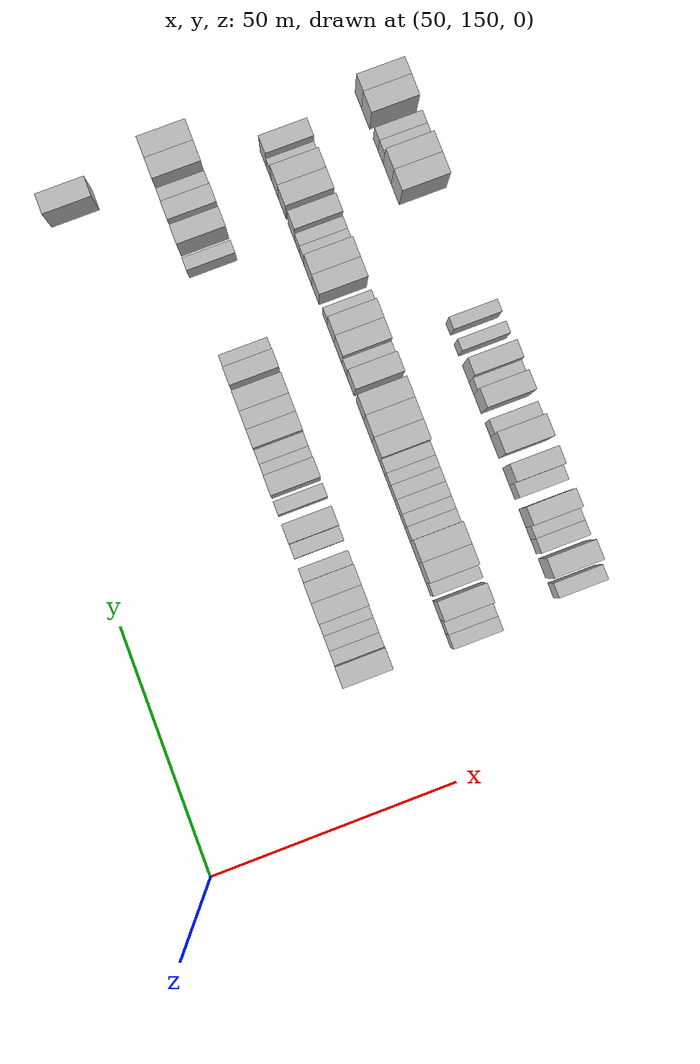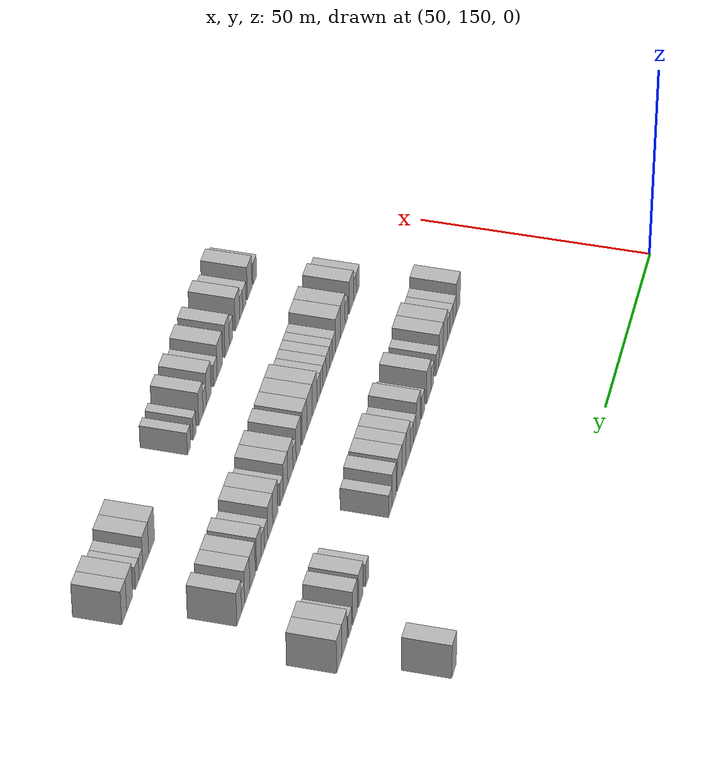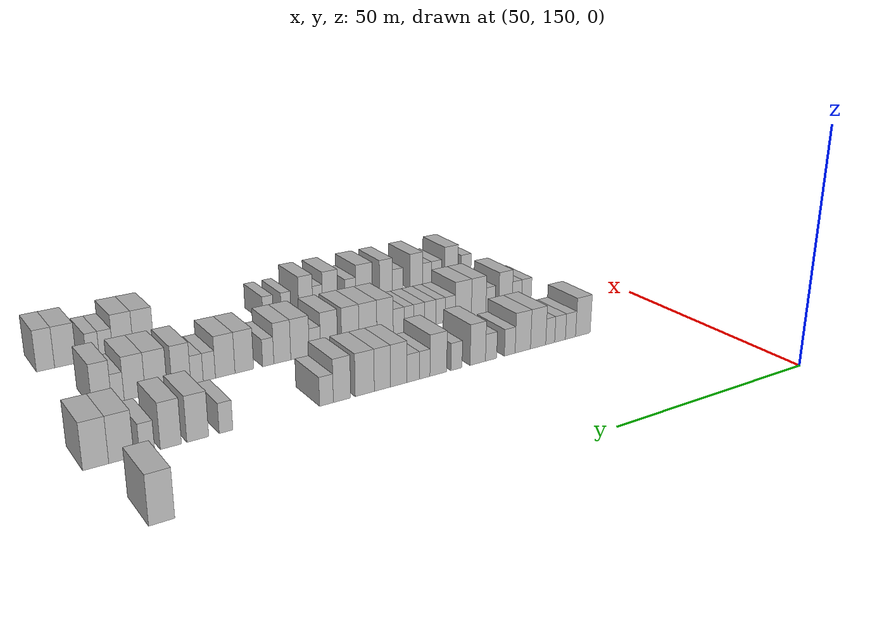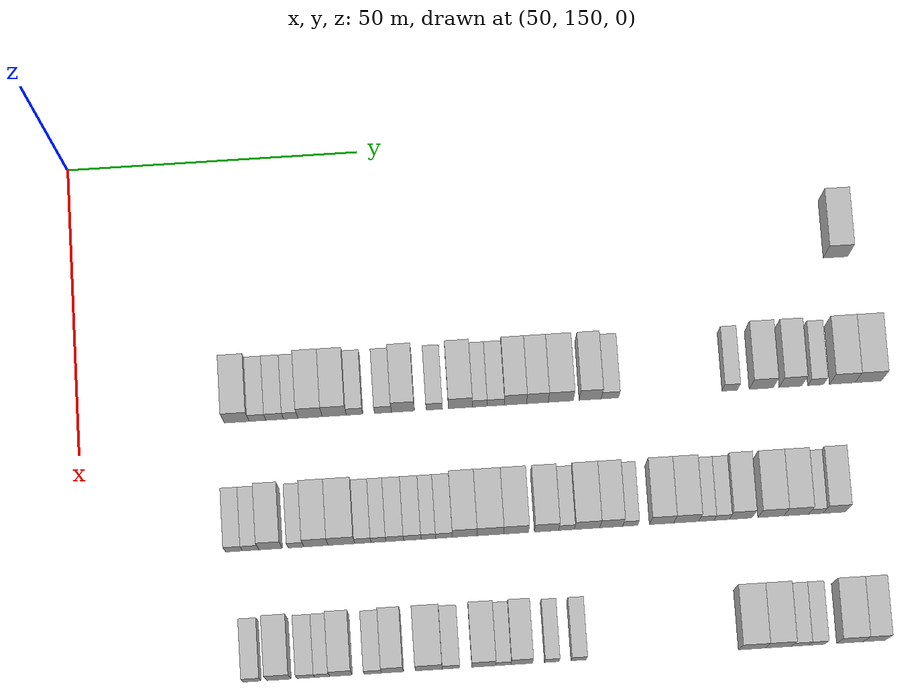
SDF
<sdf version="1.6">
 <world name="default">
  <model name="building_527">
   <static>1</static>
   <pose>69.0000 280.8551 0 0.000000 0.000000 0.000000</pose>
   <link name="link">
    <pose>0 0 4.50 0 0 0</pose>
    <collision name="collision"><geometry><box><size>10.0000 4.2234 9.0000</size></box></geometry></collision>
    <visual name="visual">
     <cast_shadows>0</cast_shadows>
     <geometry><box><size>10.0000 4.2234 9.0000</size></box></geometry>
     <material>
      <script>
       <uri>model://HANNAS_wall/materials/scripts</uri>
       <uri>model://HANNAS_wall/materials/textures</uri>
       <name>vrc/HANNAS_wall</name>
      </script>
     </material>
    </visual>
   </link>
  </model>
  <model name="building_696">
   <static>1</static>
   <pose>91.0000 176.9595 0 0.000000 0.000000 0.000000</pose>
   <link name="link">
    <pose>0 0 4.50 0 0 0</pose>
    <collision name="collision"><geometry><box><size>10.0000 4.1835 9.0000</size></box></geometry></collision>
    <visual name="visual">
     <cast_shadows>0</cast_shadows>
     <geometry><box><size>10.0000 4.1835 9.0000</size></box></geometry>
     <material>
      <script>
       <uri>model://HANNAS_wall/materials/scripts</uri>
       <uri>model://HANNAS_wall/materials/textures</uri>
       <name>vrc/HANNAS_wall</name>
      </script>
     </material>
    </visual>
   </link>
  </model>
  <model name="building_697">
   <static>1</static>
   <pose>91.0000 180.4779 0 0.000000 0.000000 0.000000</pose>
   <link name="link">
    <pose>0 0 3.00 0 0 0</pose>
    <collision name="collision"><geometry><box><size>10.0000 2.8533 6.0000</size></box></geometry></collision>
    <visual name="visual">
     <cast_shadows>0</cast_shadows>
     <geometry><box><size>10.0000 2.8533 6.0000</size></box></geometry>
     <material>
      <script>
       <uri>model://HANNAS_wall/materials/scripts</uri>
       <uri>model://HANNAS_wall/materials/textures</uri>
       <name>vrc/HANNAS_wall</name>
      </script>
     </material>
    </visual>
   </link>
  </model>
  <model name="building_698">
   <static>1</static>
   <pose>91.0000 183.4001 0 0.000000 0.000000 0.000000</pose>
   <link name="link">
    <pose>0 0 3.00 0 0 0</pose>
    <collision name="collision"><geometry><box><size>10.0000 2.9910 6.0000</size></box></geometry></collision>
    <visual name="visual">
     <cast_shadows>0</cast_shadows>
     <geometry><box><size>10.0000 2.9910 6.0000</size></box></geometry>
     <material>
      <script>
       <uri>model://HANNAS_wall/materials/scripts</uri>
       <uri>model://HANNAS_wall/materials/textures</uri>
       <name>vrc/HANNAS_wall</name>
      </script>
     </material>
    </visual>
   </link>
  </model>
  <model name="building_699">
   <static>1</static>
   <pose>91.0000 186.1237 0 0.000000 0.000000 0.000000</pose>
   <link name="link">
    <pose>0 0 3.00 0 0 0</pose>
    <collision name="collision"><geometry><box><size>10.0000 2.4561 6.0000</size></box></geometry></collision>
    <visual name="visual">
     <cast_shadows>0</cast_shadows>
     <geometry><box><size>10.0000 2.4561 6.0000</size></box></geometry>
     <material>
      <script>
       <uri>model://HANNAS_wall/materials/scripts</uri>
       <uri>model://HANNAS_wall/materials/textures</uri>
       <name>vrc/HANNAS_wall</name>
      </script>
     </material>
    </visual>
   </link>
  </model>
  <model name="building_700">
   <static>1</static>
   <pose>91.0000 189.4160 0 0.000000 0.000000 0.000000</pose>
   <link name="link">
    <pose>0 0 4.50 0 0 0</pose>
    <collision name="collision"><geometry><box><size>10.0000 4.1286 9.0000</size></box></geometry></collision>
    <visual name="visual">
     <cast_shadows>0</cast_shadows>
     <geometry><box><size>10.0000 4.1286 9.0000</size></box></geometry>
     <material>
      <script>
       <uri>model://HANNAS_wall/materials/scripts</uri>
       <uri>model://HANNAS_wall/materials/textures</uri>
       <name>vrc/HANNAS_wall</name>
      </script>
     </material>
    </visual>
   </link>
  </model>
  <model name="building_701">
   <static>1</static>
   <pose>91.0000 193.5276 0 0.000000 0.000000 0.000000</pose>
   <link name="link">
    <pose>0 0 4.50 0 0 0</pose>
    <collision name="collision"><geometry><box><size>10.0000 4.0945 9.0000</size></box></geometry></collision>
    <visual name="visual">
     <cast_shadows>0</cast_shadows>
     <geometry><box><size>10.0000 4.0945 9.0000</size></box></geometry>
     <material>
      <script>
       <uri>model://HANNAS_wall/materials/scripts</uri>
       <uri>model://HANNAS_wall/materials/textures</uri>
       <name>vrc/HANNAS_wall</name>
      </script>
     </material>
    </visual>
   </link>
  </model>
  <model name="building_702">
   <static>1</static>
   <pose>91.0000 196.9751 0 0.000000 0.000000 0.000000</pose>
   <link name="link">
    <pose>0 0 3.00 0 0 0</pose>
    <collision name="collision"><geometry><box><size>10.0000 2.8006 6.0000</size></box></geometry></collision>
    <visual name="visual">
     <cast_shadows>0</cast_shadows>
     <geometry><box><size>10.0000 2.8006 6.0000</size></box></geometry>
     <material>
      <script>
       <uri>model://HANNAS_wall/materials/scripts</uri>
       <uri>model://HANNAS_wall/materials/textures</uri>
       <name>vrc/HANNAS_wall</name>
      </script>
     </material>
    </visual>
   </link>
  </model>
  <model name="building_703">
   <static>1</static>
   <pose>91.0000 201.8153 0 0.000000 0.000000 0.000000</pose>
   <link name="link">
    <pose>0 0 3.00 0 0 0</pose>
    <collision name="collision"><geometry><box><size>10.0000 2.8797 6.0000</size></box></geometry></collision>
    <visual name="visual">
     <cast_shadows>0</cast_shadows>
     <geometry><box><size>10.0000 2.8797 6.0000</size></box></geometry>
     <material>
      <script>
       <uri>model://HANNAS_wall/materials/scripts</uri>
       <uri>model://HANNAS_wall/materials/textures</uri>
       <name>vrc/HANNAS_wall</name>
      </script>
     </material>
    </visual>
   </link>
  </model>
  <model name="building_704">
   <static>1</static>
   <pose>91.0000 205.2043 0 0.000000 0.000000 0.000000</pose>
   <link name="link">
    <pose>0 0 4.50 0 0 0</pose>
    <collision name="collision"><geometry><box><size>10.0000 3.8982 9.0000</size></box></geometry></collision>
    <visual name="visual">
     <cast_shadows>0</cast_shadows>
     <geometry><box><size>10.0000 3.8982 9.0000</size></box></geometry>
     <material>
      <script>
       <uri>model://HANNAS_wall/materials/scripts</uri>
       <uri>model://HANNAS_wall/materials/textures</uri>
       <name>vrc/HANNAS_wall</name>
      </script>
     </material>
    </visual>
   </link>
  </model>
  <model name="building_705">
   <static>1</static>
   <pose>91.0000 210.5359 0 0.000000 0.000000 0.000000</pose>
   <link name="link">
    <pose>0 0 3.00 0 0 0</pose>
    <collision name="collision"><geometry><box><size>10.0000 2.7649 6.0000</size></box></geometry></collision>
    <visual name="visual">
     <cast_shadows>0</cast_shadows>
     <geometry><box><size>10.0000 2.7649 6.0000</size></box></geometry>
     <material>
      <script>
       <uri>model://HANNAS_wall/materials/scripts</uri>
       <uri>model://HANNAS_wall/materials/textures</uri>
       <name>vrc/HANNAS_wall</name>
      </script>
     </material>
    </visual>
   </link>
  </model>
  <model name="building_706">
   <static>1</static>
   <pose>91.0000 214.9523 0 0.000000 0.000000 0.000000</pose>
   <link name="link">
    <pose>0 0 4.50 0 0 0</pose>
    <collision name="collision"><geometry><box><size>10.0000 4.0680 9.0000</size></box></geometry></collision>
    <visual name="visual">
     <cast_shadows>0</cast_shadows>
     <geometry><box><size>10.0000 4.0680 9.0000</size></box></geometry>
     <material>
      <script>
       <uri>model://HANNAS_wall/materials/scripts</uri>
       <uri>model://HANNAS_wall/materials/textures</uri>
       <name>vrc/HANNAS_wall</name>
      </script>
     </material>
    </visual>
   </link>
  </model>
  <model name="building_707">
   <static>1</static>
   <pose>91.0000 218.2369 0 0.000000 0.000000 0.000000</pose>
   <link name="link">
    <pose>0 0 3.00 0 0 0</pose>
    <collision name="collision"><geometry><box><size>10.0000 2.5013 6.0000</size></box></geometry></collision>
    <visual name="visual">
     <cast_shadows>0</cast_shadows>
     <geometry><box><size>10.0000 2.5013 6.0000</size></box></geometry>
     <material>
      <script>
       <uri>model://HANNAS_wall/materials/scripts</uri>
       <uri>model://HANNAS_wall/materials/textures</uri>
       <name>vrc/HANNAS_wall</name>
      </script>
     </material>
    </visual>
   </link>
  </model>
  <model name="building_708">
   <static>1</static>
   <pose>91.0000 220.9497 0 0.000000 0.000000 0.000000</pose>
   <link name="link">
    <pose>0 0 3.00 0 0 0</pose>
    <collision name="collision"><geometry><box><size>10.0000 2.9243 6.0000</size></box></geometry></collision>
    <visual name="visual">
     <cast_shadows>0</cast_shadows>
     <geometry><box><size>10.0000 2.9243 6.0000</size></box></geometry>
     <material>
      <script>
       <uri>model://HANNAS_wall/materials/scripts</uri>
       <uri>model://HANNAS_wall/materials/textures</uri>
       <name>vrc/HANNAS_wall</name>
      </script>
     </material>
    </visual>
   </link>
  </model>
  <model name="building_709">
   <static>1</static>
   <pose>91.0000 224.3118 0 0.000000 0.000000 0.000000</pose>
   <link name="link">
    <pose>0 0 4.50 0 0 0</pose>
    <collision name="collision"><geometry><box><size>10.0000 3.7997 9.0000</size></box></geometry></collision>
    <visual name="visual">
     <cast_shadows>0</cast_shadows>
     <geometry><box><size>10.0000 3.7997 9.0000</size></box></geometry>
     <material>
      <script>
       <uri>model://HANNAS_wall/materials/scripts</uri>
       <uri>model://HANNAS_wall/materials/textures</uri>
       <name>vrc/HANNAS_wall</name>
      </script>
     </material>
    </visual>
   </link>
  </model>
  <model name="building_710">
   <static>1</static>
   <pose>91.0000 228.0565 0 0.000000 0.000000 0.000000</pose>
   <link name="link">
    <pose>0 0 4.50 0 0 0</pose>
    <collision name="collision"><geometry><box><size>10.0000 3.6897 9.0000</size></box></geometry></collision>
    <visual name="visual">
     <cast_shadows>0</cast_shadows>
     <geometry><box><size>10.0000 3.6897 9.0000</size></box></geometry>
     <material>
      <script>
       <uri>model://HANNAS_wall/materials/scripts</uri>
       <uri>model://HANNAS_wall/materials/textures</uri>
       <name>vrc/HANNAS_wall</name>
      </script>
     </material>
    </visual>
   </link>
  </model>
  <model name="building_711">
   <static>1</static>
   <pose>91.0000 232.0329 0 0.000000 0.000000 0.000000</pose>
   <link name="link">
    <pose>0 0 4.50 0 0 0</pose>
    <collision name="collision"><geometry><box><size>10.0000 4.2632 9.0000</size></box></geometry></collision>
    <visual name="visual">
     <cast_shadows>0</cast_shadows>
     <geometry><box><size>10.0000 4.2632 9.0000</size></box></geometry>
     <material>
      <script>
       <uri>model://HANNAS_wall/materials/scripts</uri>
       <uri>model://HANNAS_wall/materials/textures</uri>
       <name>vrc/HANNAS_wall</name>
      </script>
     </material>
    </visual>
   </link>
  </model>
  <model name="building_712">
   <static>1</static>
   <pose>91.0000 237.0496 0 0.000000 0.000000 0.000000</pose>
   <link name="link">
    <pose>0 0 4.50 0 0 0</pose>
    <collision name="collision"><geometry><box><size>10.0000 3.7702 9.0000</size></box></geometry></collision>
    <visual name="visual">
     <cast_shadows>0</cast_shadows>
     <geometry><box><size>10.0000 3.7702 9.0000</size></box></geometry>
     <material>
      <script>
       <uri>model://HANNAS_wall/materials/scripts</uri>
       <uri>model://HANNAS_wall/materials/textures</uri>
       <name>vrc/HANNAS_wall</name>
      </script>
     </material>
    </visual>
   </link>
  </model>
  <model name="building_713">
   <static>1</static>
   <pose>91.0000 240.4095 0 0.000000 0.000000 0.000000</pose>
   <link name="link">
    <pose>0 0 3.00 0 0 0</pose>
    <collision name="collision"><geometry><box><size>10.0000 2.9495 6.0000</size></box></geometry></collision>
    <visual name="visual">
     <cast_shadows>0</cast_shadows>
     <geometry><box><size>10.0000 2.9495 6.0000</size></box></geometry>
     <material>
      <script>
       <uri>model://HANNAS_wall/materials/scripts</uri>
       <uri>model://HANNAS_wall/materials/textures</uri>
       <name>vrc/HANNAS_wall</name>
      </script>
     </material>
    </visual>
   </link>
  </model>
  <model name="building_714">
   <static>1</static>
   <pose>91.0000 260.8461 0 0.000000 0.000000 0.000000</pose>
   <link name="link">
    <pose>0 0 3.00 0 0 0</pose>
    <collision name="collision"><geometry><box><size>10.0000 2.6413 6.0000</size></box></geometry></collision>
    <visual name="visual">
     <cast_shadows>0</cast_shadows>
     <geometry><box><size>10.0000 2.6413 6.0000</size></box></geometry>
     <material>
      <script>
       <uri>model://HANNAS_wall/materials/scripts</uri>
       <uri>model://HANNAS_wall/materials/textures</uri>
       <name>vrc/HANNAS_wall</name>
      </script>
     </material>
    </visual>
   </link>
  </model>
  <model name="building_715">
   <static>1</static>
   <pose>91.0000 266.2227 0 0.000000 0.000000 0.000000</pose>
   <link name="link">
    <pose>0 0 4.50 0 0 0</pose>
    <collision name="collision"><geometry><box><size>10.0000 4.1119 9.0000</size></box></geometry></collision>
    <visual name="visual">
     <cast_shadows>0</cast_shadows>
     <geometry><box><size>10.0000 4.1119 9.0000</size></box></geometry>
     <material>
      <script>
       <uri>model://HANNAS_wall/materials/scripts</uri>
       <uri>model://HANNAS_wall/materials/textures</uri>
       <name>vrc/HANNAS_wall</name>
      </script>
     </material>
    </visual>
   </link>
  </model>
  <model name="building_716">
   <static>1</static>
   <pose>91.0000 271.2148 0 0.000000 0.000000 0.000000</pose>
   <link name="link">
    <pose>0 0 4.50 0 0 0</pose>
    <collision name="collision"><geometry><box><size>10.0000 3.8723 9.0000</size></box></geometry></collision>
    <visual name="visual">
     <cast_shadows>0</cast_shadows>
     <geometry><box><size>10.0000 3.8723 9.0000</size></box></geometry>
     <material>
      <script>
       <uri>model://HANNAS_wall/materials/scripts</uri>
       <uri>model://HANNAS_wall/materials/textures</uri>
       <name>vrc/HANNAS_wall</name>
      </script>
     </material>
    </visual>
   </link>
  </model>
  <model name="building_717">
   <static>1</static>
   <pose>91.0000 275.5075 0 0.000000 0.000000 0.000000</pose>
   <link name="link">
    <pose>0 0 3.00 0 0 0</pose>
    <collision name="collision"><geometry><box><size>10.0000 2.7132 6.0000</size></box></geometry></collision>
    <visual name="visual">
     <cast_shadows>0</cast_shadows>
     <geometry><box><size>10.0000 2.7132 6.0000</size></box></geometry>
     <material>
      <script>
       <uri>model://HANNAS_wall/materials/scripts</uri>
       <uri>model://HANNAS_wall/materials/textures</uri>
       <name>vrc/HANNAS_wall</name>
      </script>
     </material>
    </visual>
   </link>
  </model>
  <model name="building_718">
   <static>1</static>
   <pose>91.0000 280.0621 0 0.000000 0.000000 0.000000</pose>
   <link name="link">
    <pose>0 0 4.50 0 0 0</pose>
    <collision name="collision"><geometry><box><size>10.0000 4.3961 9.0000</size></box></geometry></collision>
    <visual name="visual">
     <cast_shadows>0</cast_shadows>
     <geometry><box><size>10.0000 4.3961 9.0000</size></box></geometry>
     <material>
      <script>
       <uri>model://HANNAS_wall/materials/scripts</uri>
       <uri>model://HANNAS_wall/materials/textures</uri>
       <name>vrc/HANNAS_wall</name>
      </script>
     </material>
    </visual>
   </link>
  </model>
  <model name="building_719">
   <static>1</static>
   <pose>91.0000 284.4985 0 0.000000 0.000000 0.000000</pose>
   <link name="link">
    <pose>0 0 4.50 0 0 0</pose>
    <collision name="collision"><geometry><box><size>10.0000 4.4768 9.0000</size></box></geometry></collision>
    <visual name="visual">
     <cast_shadows>0</cast_shadows>
     <geometry><box><size>10.0000 4.4768 9.0000</size></box></geometry>
     <material>
      <script>
       <uri>model://HANNAS_wall/materials/scripts</uri>
       <uri>model://HANNAS_wall/materials/textures</uri>
       <name>vrc/HANNAS_wall</name>
      </script>
     </material>
    </visual>
   </link>
  </model>
  <model name="building_881">
   <static>1</static>
   <pose>113.0000 175.4187 0 0.000000 0.000000 0.000000</pose>
   <link name="link">
    <pose>0 0 3.00 0 0 0</pose>
    <collision name="collision"><geometry><box><size>10.0000 2.8517 6.0000</size></box></geometry></collision>
    <visual name="visual">
     <cast_shadows>0</cast_shadows>
     <geometry><box><size>10.0000 2.8517 6.0000</size></box></geometry>
     <material>
      <script>
       <uri>model://HANNAS_wall/materials/scripts</uri>
       <uri>model://HANNAS_wall/materials/textures</uri>
       <name>vrc/HANNAS_wall</name>
      </script>
     </material>
    </visual>
   </link>
  </model>
  <model name="building_882">
   <static>1</static>
   <pose>113.0000 178.2340 0 0.000000 0.000000 0.000000</pose>
   <link name="link">
    <pose>0 0 3.00 0 0 0</pose>
    <collision name="collision"><geometry><box><size>10.0000 2.7789 6.0000</size></box></geometry></collision>
    <visual name="visual">
     <cast_shadows>0</cast_shadows>
     <geometry><box><size>10.0000 2.7789 6.0000</size></box></geometry>
     <material>
      <script>
       <uri>model://HANNAS_wall/materials/scripts</uri>
       <uri>model://HANNAS_wall/materials/textures</uri>
       <name>vrc/HANNAS_wall</name>
      </script>
     </material>
    </visual>
   </link>
  </model>
  <model name="building_883">
   <static>1</static>
   <pose>113.0000 181.5831 0 0.000000 0.000000 0.000000</pose>
   <link name="link">
    <pose>0 0 4.50 0 0 0</pose>
    <collision name="collision"><geometry><box><size>10.0000 3.9193 9.0000</size></box></geometry></collision>
    <visual name="visual">
     <cast_shadows>0</cast_shadows>
     <geometry><box><size>10.0000 3.9193 9.0000</size></box></geometry>
     <material>
      <script>
       <uri>model://HANNAS_wall/materials/scripts</uri>
       <uri>model://HANNAS_wall/materials/textures</uri>
       <name>vrc/HANNAS_wall</name>
      </script>
     </material>
    </visual>
   </link>
  </model>
  <model name="building_884">
   <static>1</static>
   <pose>113.0000 185.8639 0 0.000000 0.000000 0.000000</pose>
   <link name="link">
    <pose>0 0 3.00 0 0 0</pose>
    <collision name="collision"><geometry><box><size>10.0000 2.6425 6.0000</size></box></geometry></collision>
    <visual name="visual">
     <cast_shadows>0</cast_shadows>
     <geometry><box><size>10.0000 2.6425 6.0000</size></box></geometry>
     <material>
      <script>
       <uri>model://HANNAS_wall/materials/scripts</uri>
       <uri>model://HANNAS_wall/materials/textures</uri>
       <name>vrc/HANNAS_wall</name>
      </script>
     </material>
    </visual>
   </link>
  </model>
  <model name="building_885">
   <static>1</static>
   <pose>113.0000 189.2327 0 0.000000 0.000000 0.000000</pose>
   <link name="link">
    <pose>0 0 4.50 0 0 0</pose>
    <collision name="collision"><geometry><box><size>10.0000 4.0952 9.0000</size></box></geometry></collision>
    <visual name="visual">
     <cast_shadows>0</cast_shadows>
     <geometry><box><size>10.0000 4.0952 9.0000</size></box></geometry>
     <material>
      <script>
       <uri>model://HANNAS_wall/materials/scripts</uri>
       <uri>model://HANNAS_wall/materials/textures</uri>
       <name>vrc/HANNAS_wall</name>
      </script>
     </material>
    </visual>
   </link>
  </model>
  <model name="building_886">
   <static>1</static>
   <pose>113.0000 193.5182 0 0.000000 0.000000 0.000000</pose>
   <link name="link">
    <pose>0 0 4.50 0 0 0</pose>
    <collision name="collision"><geometry><box><size>10.0000 4.4757 9.0000</size></box></geometry></collision>
    <visual name="visual">
     <cast_shadows>0</cast_shadows>
     <geometry><box><size>10.0000 4.4757 9.0000</size></box></geometry>
     <material>
      <script>
       <uri>model://HANNAS_wall/materials/scripts</uri>
       <uri>model://HANNAS_wall/materials/textures</uri>
       <name>vrc/HANNAS_wall</name>
      </script>
     </material>
    </visual>
   </link>
  </model>
  <model name="building_887">
   <static>1</static>
   <pose>113.0000 197.1336 0 0.000000 0.000000 0.000000</pose>
   <link name="link">
    <pose>0 0 3.00 0 0 0</pose>
    <collision name="collision"><geometry><box><size>10.0000 2.7551 6.0000</size></box></geometry></collision>
    <visual name="visual">
     <cast_shadows>0</cast_shadows>
     <geometry><box><size>10.0000 2.7551 6.0000</size></box></geometry>
     <material>
      <script>
       <uri>model://HANNAS_wall/materials/scripts</uri>
       <uri>model://HANNAS_wall/materials/textures</uri>
       <name>vrc/HANNAS_wall</name>
      </script>
     </material>
    </visual>
   </link>
  </model>
  <model name="building_888">
   <static>1</static>
   <pose>113.0000 199.7704 0 0.000000 0.000000 0.000000</pose>
   <link name="link">
    <pose>0 0 3.00 0 0 0</pose>
    <collision name="collision"><geometry><box><size>10.0000 2.5185 6.0000</size></box></geometry></collision>
    <visual name="visual">
     <cast_shadows>0</cast_shadows>
     <geometry><box><size>10.0000 2.5185 6.0000</size></box></geometry>
     <material>
      <script>
       <uri>model://HANNAS_wall/materials/scripts</uri>
       <uri>model://HANNAS_wall/materials/textures</uri>
       <name>vrc/HANNAS_wall</name>
      </script>
     </material>
    </visual>
   </link>
  </model>
  <model name="building_889">
   <static>1</static>
   <pose>113.0000 202.5115 0 0.000000 0.000000 0.000000</pose>
   <link name="link">
    <pose>0 0 3.00 0 0 0</pose>
    <collision name="collision"><geometry><box><size>10.0000 2.9639 6.0000</size></box></geometry></collision>
    <visual name="visual">
     <cast_shadows>0</cast_shadows>
     <geometry><box><size>10.0000 2.9639 6.0000</size></box></geometry>
     <material>
      <script>
       <uri>model://HANNAS_wall/materials/scripts</uri>
       <uri>model://HANNAS_wall/materials/textures</uri>
       <name>vrc/HANNAS_wall</name>
      </script>
     </material>
    </visual>
   </link>
  </model>
  <model name="building_890">
   <static>1</static>
   <pose>113.0000 205.4619 0 0.000000 0.000000 0.000000</pose>
   <link name="link">
    <pose>0 0 3.00 0 0 0</pose>
    <collision name="collision"><geometry><box><size>10.0000 2.9369 6.0000</size></box></geometry></collision>
    <visual name="visual">
     <cast_shadows>0</cast_shadows>
     <geometry><box><size>10.0000 2.9369 6.0000</size></box></geometry>
     <material>
      <script>
       <uri>model://HANNAS_wall/materials/scripts</uri>
       <uri>model://HANNAS_wall/materials/textures</uri>
       <name>vrc/HANNAS_wall</name>
      </script>
     </material>
    </visual>
   </link>
  </model>
  <model name="building_891">
   <static>1</static>
   <pose>113.0000 208.1551 0 0.000000 0.000000 0.000000</pose>
   <link name="link">
    <pose>0 0 3.00 0 0 0</pose>
    <collision name="collision"><geometry><box><size>10.0000 2.4495 6.0000</size></box></geometry></collision>
    <visual name="visual">
     <cast_shadows>0</cast_shadows>
     <geometry><box><size>10.0000 2.4495 6.0000</size></box></geometry>
     <material>
      <script>
       <uri>model://HANNAS_wall/materials/scripts</uri>
       <uri>model://HANNAS_wall/materials/textures</uri>
       <name>vrc/HANNAS_wall</name>
      </script>
     </material>
    </visual>
   </link>
  </model>
  <model name="building_892">
   <static>1</static>
   <pose>113.0000 210.7894 0 0.000000 0.000000 0.000000</pose>
   <link name="link">
    <pose>0 0 3.00 0 0 0</pose>
    <collision name="collision"><geometry><box><size>10.0000 2.8192 6.0000</size></box></geometry></collision>
    <visual name="visual">
     <cast_shadows>0</cast_shadows>
     <geometry><box><size>10.0000 2.8192 6.0000</size></box></geometry>
     <material>
      <script>
       <uri>model://HANNAS_wall/materials/scripts</uri>
       <uri>model://HANNAS_wall/materials/textures</uri>
       <name>vrc/HANNAS_wall</name>
      </script>
     </material>
    </visual>
   </link>
  </model>
  <model name="building_893">
   <static>1</static>
   <pose>113.0000 214.2744 0 0.000000 0.000000 0.000000</pose>
   <link name="link">
    <pose>0 0 4.50 0 0 0</pose>
    <collision name="collision"><geometry><box><size>10.0000 4.1509 9.0000</size></box></geometry></collision>
    <visual name="visual">
     <cast_shadows>0</cast_shadows>
     <geometry><box><size>10.0000 4.1509 9.0000</size></box></geometry>
     <material>
      <script>
       <uri>model://HANNAS_wall/materials/scripts</uri>
       <uri>model://HANNAS_wall/materials/textures</uri>
       <name>vrc/HANNAS_wall</name>
      </script>
     </material>
    </visual>
   </link>
  </model>
  <model name="building_894">
   <static>1</static>
   <pose>113.0000 218.5866 0 0.000000 0.000000 0.000000</pose>
   <link name="link">
    <pose>0 0 4.50 0 0 0</pose>
    <collision name="collision"><geometry><box><size>10.0000 4.4734 9.0000</size></box></geometry></collision>
    <visual name="visual">
     <cast_shadows>0</cast_shadows>
     <geometry><box><size>10.0000 4.4734 9.0000</size></box></geometry>
     <material>
      <script>
       <uri>model://HANNAS_wall/materials/scripts</uri>
       <uri>model://HANNAS_wall/materials/textures</uri>
       <name>vrc/HANNAS_wall</name>
      </script>
     </material>
    </visual>
   </link>
  </model>
  <model name="building_895">
   <static>1</static>
   <pose>113.0000 222.9352 0 0.000000 0.000000 0.000000</pose>
   <link name="link">
    <pose>0 0 4.50 0 0 0</pose>
    <collision name="collision"><geometry><box><size>10.0000 4.2239 9.0000</size></box></geometry></collision>
    <visual name="visual">
     <cast_shadows>0</cast_shadows>
     <geometry><box><size>10.0000 4.2239 9.0000</size></box></geometry>
     <material>
      <script>
       <uri>model://HANNAS_wall/materials/scripts</uri>
       <uri>model://HANNAS_wall/materials/textures</uri>
       <name>vrc/HANNAS_wall</name>
      </script>
     </material>
    </visual>
   </link>
  </model>
  <model name="building_896">
   <static>1</static>
   <pose>113.0000 228.0871 0 0.000000 0.000000 0.000000</pose>
   <link name="link">
    <pose>0 0 4.50 0 0 0</pose>
    <collision name="collision"><geometry><box><size>10.0000 4.0799 9.0000</size></box></geometry></collision>
    <visual name="visual">
     <cast_shadows>0</cast_shadows>
     <geometry><box><size>10.0000 4.0799 9.0000</size></box></geometry>
     <material>
      <script>
       <uri>model://HANNAS_wall/materials/scripts</uri>
       <uri>model://HANNAS_wall/materials/textures</uri>
       <name>vrc/HANNAS_wall</name>
      </script>
     </material>
    </visual>
   </link>
  </model>
  <model name="building_897">
   <static>1</static>
   <pose>113.0000 231.4482 0 0.000000 0.000000 0.000000</pose>
   <link name="link">
    <pose>0 0 3.00 0 0 0</pose>
    <collision name="collision"><geometry><box><size>10.0000 2.6424 6.0000</size></box></geometry></collision>
    <visual name="visual">
     <cast_shadows>0</cast_shadows>
     <geometry><box><size>10.0000 2.6424 6.0000</size></box></geometry>
     <material>
      <script>
       <uri>model://HANNAS_wall/materials/scripts</uri>
       <uri>model://HANNAS_wall/materials/textures</uri>
       <name>vrc/HANNAS_wall</name>
      </script>
     </material>
    </visual>
   </link>
  </model>
  <model name="building_898">
   <static>1</static>
   <pose>113.0000 234.9183 0 0.000000 0.000000 0.000000</pose>
   <link name="link">
    <pose>0 0 4.50 0 0 0</pose>
    <collision name="collision"><geometry><box><size>10.0000 4.2978 9.0000</size></box></geometry></collision>
    <visual name="visual">
     <cast_shadows>0</cast_shadows>
     <geometry><box><size>10.0000 4.2978 9.0000</size></box></geometry>
     <material>
      <script>
       <uri>model://HANNAS_wall/materials/scripts</uri>
       <uri>model://HANNAS_wall/materials/textures</uri>
       <name>vrc/HANNAS_wall</name>
      </script>
     </material>
    </visual>
   </link>
  </model>
  <model name="building_899">
   <static>1</static>
   <pose>113.0000 239.0048 0 0.000000 0.000000 0.000000</pose>
   <link name="link">
    <pose>0 0 4.50 0 0 0</pose>
    <collision name="collision"><geometry><box><size>10.0000 3.8751 9.0000</size></box></geometry></collision>
    <visual name="visual">
     <cast_shadows>0</cast_shadows>
     <geometry><box><size>10.0000 3.8751 9.0000</size></box></geometry>
     <material>
      <script>
       <uri>model://HANNAS_wall/materials/scripts</uri>
       <uri>model://HANNAS_wall/materials/textures</uri>
       <name>vrc/HANNAS_wall</name>
      </script>
     </material>
    </visual>
   </link>
  </model>
  <model name="building_900">
   <static>1</static>
   <pose>113.0000 242.2015 0 0.000000 0.000000 0.000000</pose>
   <link name="link">
    <pose>0 0 3.00 0 0 0</pose>
    <collision name="collision"><geometry><box><size>10.0000 2.5185 6.0000</size></box></geometry></collision>
    <visual name="visual">
     <cast_shadows>0</cast_shadows>
     <geometry><box><size>10.0000 2.5185 6.0000</size></box></geometry>
     <material>
      <script>
       <uri>model://HANNAS_wall/materials/scripts</uri>
       <uri>model://HANNAS_wall/materials/textures</uri>
       <name>vrc/HANNAS_wall</name>
      </script>
     </material>
    </visual>
   </link>
  </model>
  <model name="building_901">
   <static>1</static>
   <pose>113.0000 247.5076 0 0.000000 0.000000 0.000000</pose>
   <link name="link">
    <pose>0 0 4.50 0 0 0</pose>
    <collision name="collision"><geometry><box><size>10.0000 4.0935 9.0000</size></box></geometry></collision>
    <visual name="visual">
     <cast_shadows>0</cast_shadows>
     <geometry><box><size>10.0000 4.0935 9.0000</size></box></geometry>
     <material>
      <script>
       <uri>model://HANNAS_wall/materials/scripts</uri>
       <uri>model://HANNAS_wall/materials/textures</uri>
       <name>vrc/HANNAS_wall</name>
      </script>
     </material>
    </visual>
   </link>
  </model>
  <model name="building_902">
   <static>1</static>
   <pose>113.0000 251.6599 0 0.000000 0.000000 0.000000</pose>
   <link name="link">
    <pose>0 0 4.50 0 0 0</pose>
    <collision name="collision"><geometry><box><size>10.0000 4.2111 9.0000</size></box></geometry></collision>
    <visual name="visual">
     <cast_shadows>0</cast_shadows>
     <geometry><box><size>10.0000 4.2111 9.0000</size></box></geometry>
     <material>
      <script>
       <uri>model://HANNAS_wall/materials/scripts</uri>
       <uri>model://HANNAS_wall/materials/textures</uri>
       <name>vrc/HANNAS_wall</name>
      </script>
     </material>
    </visual>
   </link>
  </model>
  <model name="building_903">
   <static>1</static>
   <pose>113.0000 255.0552 0 0.000000 0.000000 0.000000</pose>
   <link name="link">
    <pose>0 0 3.00 0 0 0</pose>
    <collision name="collision"><geometry><box><size>10.0000 2.5796 6.0000</size></box></geometry></collision>
    <visual name="visual">
     <cast_shadows>0</cast_shadows>
     <geometry><box><size>10.0000 2.5796 6.0000</size></box></geometry>
     <material>
      <script>
       <uri>model://HANNAS_wall/materials/scripts</uri>
       <uri>model://HANNAS_wall/materials/textures</uri>
       <name>vrc/HANNAS_wall</name>
      </script>
     </material>
    </visual>
   </link>
  </model>
  <model name="building_904">
   <static>1</static>
   <pose>113.0000 257.6478 0 0.000000 0.000000 0.000000</pose>
   <link name="link">
    <pose>0 0 3.00 0 0 0</pose>
    <collision name="collision"><geometry><box><size>10.0000 2.6055 6.0000</size></box></geometry></collision>
    <visual name="visual">
     <cast_shadows>0</cast_shadows>
     <geometry><box><size>10.0000 2.6055 6.0000</size></box></geometry>
     <material>
      <script>
       <uri>model://HANNAS_wall/materials/scripts</uri>
       <uri>model://HANNAS_wall/materials/textures</uri>
       <name>vrc/HANNAS_wall</name>
      </script>
     </material>
    </visual>
   </link>
  </model>
  <model name="building_905">
   <static>1</static>
   <pose>113.0000 260.8775 0 0.000000 0.000000 0.000000</pose>
   <link name="link">
    <pose>0 0 4.50 0 0 0</pose>
    <collision name="collision"><geometry><box><size>10.0000 3.8540 9.0000</size></box></geometry></collision>
    <visual name="visual">
     <cast_shadows>0</cast_shadows>
     <geometry><box><size>10.0000 3.8540 9.0000</size></box></geometry>
     <material>
      <script>
       <uri>model://HANNAS_wall/materials/scripts</uri>
       <uri>model://HANNAS_wall/materials/textures</uri>
       <name>vrc/HANNAS_wall</name>
      </script>
     </material>
    </visual>
   </link>
  </model>
  <model name="building_906">
   <static>1</static>
   <pose>113.0000 265.9988 0 0.000000 0.000000 0.000000</pose>
   <link name="link">
    <pose>0 0 4.50 0 0 0</pose>
    <collision name="collision"><geometry><box><size>10.0000 4.3887 9.0000</size></box></geometry></collision>
    <visual name="visual">
     <cast_shadows>0</cast_shadows>
     <geometry><box><size>10.0000 4.3887 9.0000</size></box></geometry>
     <material>
      <script>
       <uri>model://HANNAS_wall/materials/scripts</uri>
       <uri>model://HANNAS_wall/materials/textures</uri>
       <name>vrc/HANNAS_wall</name>
      </script>
     </material>
    </visual>
   </link>
  </model>
  <model name="building_907">
   <static>1</static>
   <pose>113.0000 270.2807 0 0.000000 0.000000 0.000000</pose>
   <link name="link">
    <pose>0 0 4.50 0 0 0</pose>
    <collision name="collision"><geometry><box><size>10.0000 4.1750 9.0000</size></box></geometry></collision>
    <visual name="visual">
     <cast_shadows>0</cast_shadows>
     <geometry><box><size>10.0000 4.1750 9.0000</size></box></geometry>
     <material>
      <script>
       <uri>model://HANNAS_wall/materials/scripts</uri>
       <uri>model://HANNAS_wall/materials/textures</uri>
       <name>vrc/HANNAS_wall</name>
      </script>
     </material>
    </visual>
   </link>
  </model>
  <model name="building_908">
   <static>1</static>
   <pose>113.0000 273.5932 0 0.000000 0.000000 0.000000</pose>
   <link name="link">
    <pose>0 0 3.00 0 0 0</pose>
    <collision name="collision"><geometry><box><size>10.0000 2.4500 6.0000</size></box></geometry></collision>
    <visual name="visual">
     <cast_shadows>0</cast_shadows>
     <geometry><box><size>10.0000 2.4500 6.0000</size></box></geometry>
     <material>
      <script>
       <uri>model://HANNAS_wall/materials/scripts</uri>
       <uri>model://HANNAS_wall/materials/textures</uri>
       <name>vrc/HANNAS_wall</name>
      </script>
     </material>
    </visual>
   </link>
  </model>
  <model name="building_909">
   <static>1</static>
   <pose>113.0000 276.7080 0 0.000000 0.000000 0.000000</pose>
   <link name="link">
    <pose>0 0 4.50 0 0 0</pose>
    <collision name="collision"><geometry><box><size>10.0000 3.7795 9.0000</size></box></geometry></collision>
    <visual name="visual">
     <cast_shadows>0</cast_shadows>
     <geometry><box><size>10.0000 3.7795 9.0000</size></box></geometry>
     <material>
      <script>
       <uri>model://HANNAS_wall/materials/scripts</uri>
       <uri>model://HANNAS_wall/materials/textures</uri>
       <name>vrc/HANNAS_wall</name>
      </script>
     </material>
    </visual>
   </link>
  </model>
  <model name="building_1070">
   <static>1</static>
   <pose>135.0000 177.3646 0 0.000000 0.000000 0.000000</pose>
   <link name="link">
    <pose>0 0 3.00 0 0 0</pose>
    <collision name="collision"><geometry><box><size>10.0000 2.9794 6.0000</size></box></geometry></collision>
    <visual name="visual">
     <cast_shadows>0</cast_shadows>
     <geometry><box><size>10.0000 2.9794 6.0000</size></box></geometry>
     <material>
      <script>
       <uri>model://HANNAS_wall/materials/scripts</uri>
       <uri>model://HANNAS_wall/materials/textures</uri>
       <name>vrc/HANNAS_wall</name>
      </script>
     </material>
    </visual>
   </link>
  </model>
  <model name="building_1071">
   <static>1</static>
   <pose>135.0000 181.8553 0 0.000000 0.000000 0.000000</pose>
   <link name="link">
    <pose>0 0 4.50 0 0 0</pose>
    <collision name="collision"><geometry><box><size>10.0000 4.0020 9.0000</size></box></geometry></collision>
    <visual name="visual">
     <cast_shadows>0</cast_shadows>
     <geometry><box><size>10.0000 4.0020 9.0000</size></box></geometry>
     <material>
      <script>
       <uri>model://HANNAS_wall/materials/scripts</uri>
       <uri>model://HANNAS_wall/materials/textures</uri>
       <name>vrc/HANNAS_wall</name>
      </script>
     </material>
    </visual>
   </link>
  </model>
  <model name="building_1072">
   <static>1</static>
   <pose>135.0000 186.3436 0 0.000000 0.000000 0.000000</pose>
   <link name="link">
    <pose>0 0 3.00 0 0 0</pose>
    <collision name="collision"><geometry><box><size>10.0000 2.9745 6.0000</size></box></geometry></collision>
    <visual name="visual">
     <cast_shadows>0</cast_shadows>
     <geometry><box><size>10.0000 2.9745 6.0000</size></box></geometry>
     <material>
      <script>
       <uri>model://HANNAS_wall/materials/scripts</uri>
       <uri>model://HANNAS_wall/materials/textures</uri>
       <name>vrc/HANNAS_wall</name>
      </script>
     </material>
    </visual>
   </link>
  </model>
  <model name="building_1073">
   <static>1</static>
   <pose>135.0000 189.0920 0 0.000000 0.000000 0.000000</pose>
   <link name="link">
    <pose>0 0 3.00 0 0 0</pose>
    <collision name="collision"><geometry><box><size>10.0000 2.5223 6.0000</size></box></geometry></collision>
    <visual name="visual">
     <cast_shadows>0</cast_shadows>
     <geometry><box><size>10.0000 2.5223 6.0000</size></box></geometry>
     <material>
      <script>
       <uri>model://HANNAS_wall/materials/scripts</uri>
       <uri>model://HANNAS_wall/materials/textures</uri>
       <name>vrc/HANNAS_wall</name>
      </script>
     </material>
    </visual>
   </link>
  </model>
  <model name="building_1074">
   <static>1</static>
   <pose>135.0000 192.2121 0 0.000000 0.000000 0.000000</pose>
   <link name="link">
    <pose>0 0 4.50 0 0 0</pose>
    <collision name="collision"><geometry><box><size>10.0000 3.7179 9.0000</size></box></geometry></collision>
    <visual name="visual">
     <cast_shadows>0</cast_shadows>
     <geometry><box><size>10.0000 3.7179 9.0000</size></box></geometry>
     <material>
      <script>
       <uri>model://HANNAS_wall/materials/scripts</uri>
       <uri>model://HANNAS_wall/materials/textures</uri>
       <name>vrc/HANNAS_wall</name>
      </script>
     </material>
    </visual>
   </link>
  </model>
  <model name="building_1075">
   <static>1</static>
   <pose>135.0000 197.5433 0 0.000000 0.000000 0.000000</pose>
   <link name="link">
    <pose>0 0 3.00 0 0 0</pose>
    <collision name="collision"><geometry><box><size>10.0000 2.9447 6.0000</size></box></geometry></collision>
    <visual name="visual">
     <cast_shadows>0</cast_shadows>
     <geometry><box><size>10.0000 2.9447 6.0000</size></box></geometry>
     <material>
      <script>
       <uri>model://HANNAS_wall/materials/scripts</uri>
       <uri>model://HANNAS_wall/materials/textures</uri>
       <name>vrc/HANNAS_wall</name>
      </script>
     </material>
    </visual>
   </link>
  </model>
  <model name="building_1076">
   <static>1</static>
   <pose>135.0000 200.8307 0 0.000000 0.000000 0.000000</pose>
   <link name="link">
    <pose>0 0 4.50 0 0 0</pose>
    <collision name="collision"><geometry><box><size>10.0000 3.6300 9.0000</size></box></geometry></collision>
    <visual name="visual">
     <cast_shadows>0</cast_shadows>
     <geometry><box><size>10.0000 3.6300 9.0000</size></box></geometry>
     <material>
      <script>
       <uri>model://HANNAS_wall/materials/scripts</uri>
       <uri>model://HANNAS_wall/materials/textures</uri>
       <name>vrc/HANNAS_wall</name>
      </script>
     </material>
    </visual>
   </link>
  </model>
  <model name="building_1077">
   <static>1</static>
   <pose>135.0000 206.8819 0 0.000000 0.000000 0.000000</pose>
   <link name="link">
    <pose>0 0 4.50 0 0 0</pose>
    <collision name="collision"><geometry><box><size>10.0000 4.4724 9.0000</size></box></geometry></collision>
    <visual name="visual">
     <cast_shadows>0</cast_shadows>
     <geometry><box><size>10.0000 4.4724 9.0000</size></box></geometry>
     <material>
      <script>
       <uri>model://HANNAS_wall/materials/scripts</uri>
       <uri>model://HANNAS_wall/materials/textures</uri>
       <name>vrc/HANNAS_wall</name>
      </script>
     </material>
    </visual>
   </link>
  </model>
  <model name="building_1078">
   <static>1</static>
   <pose>135.0000 210.5753 0 0.000000 0.000000 0.000000</pose>
   <link name="link">
    <pose>0 0 3.00 0 0 0</pose>
    <collision name="collision"><geometry><box><size>10.0000 2.9145 6.0000</size></box></geometry></collision>
    <visual name="visual">
     <cast_shadows>0</cast_shadows>
     <geometry><box><size>10.0000 2.9145 6.0000</size></box></geometry>
     <material>
      <script>
       <uri>model://HANNAS_wall/materials/scripts</uri>
       <uri>model://HANNAS_wall/materials/textures</uri>
       <name>vrc/HANNAS_wall</name>
      </script>
     </material>
    </visual>
   </link>
  </model>
  <model name="building_1079">
   <static>1</static>
   <pose>135.0000 216.0342 0 0.000000 0.000000 0.000000</pose>
   <link name="link">
    <pose>0 0 4.50 0 0 0</pose>
    <collision name="collision"><geometry><box><size>10.0000 4.0033 9.0000</size></box></geometry></collision>
    <visual name="visual">
     <cast_shadows>0</cast_shadows>
     <geometry><box><size>10.0000 4.0033 9.0000</size></box></geometry>
     <material>
      <script>
       <uri>model://HANNAS_wall/materials/scripts</uri>
       <uri>model://HANNAS_wall/materials/textures</uri>
       <name>vrc/HANNAS_wall</name>
      </script>
     </material>
    </visual>
   </link>
  </model>
  <model name="building_1080">
   <static>1</static>
   <pose>135.0000 219.3138 0 0.000000 0.000000 0.000000</pose>
   <link name="link">
    <pose>0 0 3.00 0 0 0</pose>
    <collision name="collision"><geometry><box><size>10.0000 2.5559 6.0000</size></box></geometry></collision>
    <visual name="visual">
     <cast_shadows>0</cast_shadows>
     <geometry><box><size>10.0000 2.5559 6.0000</size></box></geometry>
     <material>
      <script>
       <uri>model://HANNAS_wall/materials/scripts</uri>
       <uri>model://HANNAS_wall/materials/textures</uri>
       <name>vrc/HANNAS_wall</name>
      </script>
     </material>
    </visual>
   </link>
  </model>
  <model name="building_1081">
   <static>1</static>
   <pose>135.0000 222.3918 0 0.000000 0.000000 0.000000</pose>
   <link name="link">
    <pose>0 0 4.50 0 0 0</pose>
    <collision name="collision"><geometry><box><size>10.0000 3.6002 9.0000</size></box></geometry></collision>
    <visual name="visual">
     <cast_shadows>0</cast_shadows>
     <geometry><box><size>10.0000 3.6002 9.0000</size></box></geometry>
     <material>
      <script>
       <uri>model://HANNAS_wall/materials/scripts</uri>
       <uri>model://HANNAS_wall/materials/textures</uri>
       <name>vrc/HANNAS_wall</name>
      </script>
     </material>
    </visual>
   </link>
  </model>
  <model name="building_1082">
   <static>1</static>
   <pose>135.0000 227.4121 0 0.000000 0.000000 0.000000</pose>
   <link name="link">
    <pose>0 0 3.00 0 0 0</pose>
    <collision name="collision"><geometry><box><size>10.0000 2.4403 6.0000</size></box></geometry></collision>
    <visual name="visual">
     <cast_shadows>0</cast_shadows>
     <geometry><box><size>10.0000 2.4403 6.0000</size></box></geometry>
     <material>
      <script>
       <uri>model://HANNAS_wall/materials/scripts</uri>
       <uri>model://HANNAS_wall/materials/textures</uri>
       <name>vrc/HANNAS_wall</name>
      </script>
     </material>
    </visual>
   </link>
  </model>
  <model name="building_1083">
   <static>1</static>
   <pose>135.0000 231.9140 0 0.000000 0.000000 0.000000</pose>
   <link name="link">
    <pose>0 0 3.00 0 0 0</pose>
    <collision name="collision"><geometry><box><size>10.0000 2.5635 6.0000</size></box></geometry></collision>
    <visual name="visual">
     <cast_shadows>0</cast_shadows>
     <geometry><box><size>10.0000 2.5635 6.0000</size></box></geometry>
     <material>
      <script>
       <uri>model://HANNAS_wall/materials/scripts</uri>
       <uri>model://HANNAS_wall/materials/textures</uri>
       <name>vrc/HANNAS_wall</name>
      </script>
     </material>
    </visual>
   </link>
  </model>
  <model name="building_1084">
   <static>1</static>
   <pose>135.0000 260.9365 0 0.000000 0.000000 0.000000</pose>
   <link name="link">
    <pose>0 0 4.50 0 0 0</pose>
    <collision name="collision"><geometry><box><size>10.0000 4.4939 9.0000</size></box></geometry></collision>
    <visual name="visual">
     <cast_shadows>0</cast_shadows>
     <geometry><box><size>10.0000 4.4939 9.0000</size></box></geometry>
     <material>
      <script>
       <uri>model://HANNAS_wall/materials/scripts</uri>
       <uri>model://HANNAS_wall/materials/textures</uri>
       <name>vrc/HANNAS_wall</name>
      </script>
     </material>
    </visual>
   </link>
  </model>
  <model name="building_1085">
   <static>1</static>
   <pose>135.0000 265.3770 0 0.000000 0.000000 0.000000</pose>
   <link name="link">
    <pose>0 0 4.50 0 0 0</pose>
    <collision name="collision"><geometry><box><size>10.0000 4.3870 9.0000</size></box></geometry></collision>
    <visual name="visual">
     <cast_shadows>0</cast_shadows>
     <geometry><box><size>10.0000 4.3870 9.0000</size></box></geometry>
     <material>
      <script>
       <uri>model://HANNAS_wall/materials/scripts</uri>
       <uri>model://HANNAS_wall/materials/textures</uri>
       <name>vrc/HANNAS_wall</name>
      </script>
     </material>
    </visual>
   </link>
  </model>
  <model name="building_1086">
   <static>1</static>
   <pose>135.0000 269.0132 0 0.000000 0.000000 0.000000</pose>
   <link name="link">
    <pose>0 0 3.00 0 0 0</pose>
    <collision name="collision"><geometry><box><size>10.0000 2.8855 6.0000</size></box></geometry></collision>
    <visual name="visual">
     <cast_shadows>0</cast_shadows>
     <geometry><box><size>10.0000 2.8855 6.0000</size></box></geometry>
     <material>
      <script>
       <uri>model://HANNAS_wall/materials/scripts</uri>
       <uri>model://HANNAS_wall/materials/textures</uri>
       <name>vrc/HANNAS_wall</name>
      </script>
     </material>
    </visual>
   </link>
  </model>
  <model name="building_1087">
   <static>1</static>
   <pose>135.0000 271.8175 0 0.000000 0.000000 0.000000</pose>
   <link name="link">
    <pose>0 0 3.00 0 0 0</pose>
    <collision name="collision"><geometry><box><size>10.0000 2.7230 6.0000</size></box></geometry></collision>
    <visual name="visual">
     <cast_shadows>0</cast_shadows>
     <geometry><box><size>10.0000 2.7230 6.0000</size></box></geometry>
     <material>
      <script>
       <uri>model://HANNAS_wall/materials/scripts</uri>
       <uri>model://HANNAS_wall/materials/textures</uri>
       <name>vrc/HANNAS_wall</name>
      </script>
     </material>
    </visual>
   </link>
  </model>
  <model name="building_1088">
   <static>1</static>
   <pose>135.0000 277.4252 0 0.000000 0.000000 0.000000</pose>
   <link name="link">
    <pose>0 0 4.50 0 0 0</pose>
    <collision name="collision"><geometry><box><size>10.0000 4.4924 9.0000</size></box></geometry></collision>
    <visual name="visual">
     <cast_shadows>0</cast_shadows>
     <geometry><box><size>10.0000 4.4924 9.0000</size></box></geometry>
     <material>
      <script>
       <uri>model://HANNAS_wall/materials/scripts</uri>
       <uri>model://HANNAS_wall/materials/textures</uri>
       <name>vrc/HANNAS_wall</name>
      </script>
     </material>
    </visual>
   </link>
  </model>
  <model name="building_1089">
   <static>1</static>
   <pose>135.0000 281.5008 0 0.000000 0.000000 0.000000</pose>
   <link name="link">
    <pose>0 0 4.50 0 0 0</pose>
    <collision name="collision"><geometry><box><size>10.0000 3.6588 9.0000</size></box></geometry></collision>
    <visual name="visual">
     <cast_shadows>0</cast_shadows>
     <geometry><box><size>10.0000 3.6588 9.0000</size></box></geometry>
     <material>
      <script>
       <uri>model://HANNAS_wall/materials/scripts</uri>
       <uri>model://HANNAS_wall/materials/textures</uri>
       <name>vrc/HANNAS_wall</name>
      </script>
     </material>
    </visual>
   </link>
  </model>
 </world>
</sdf>
